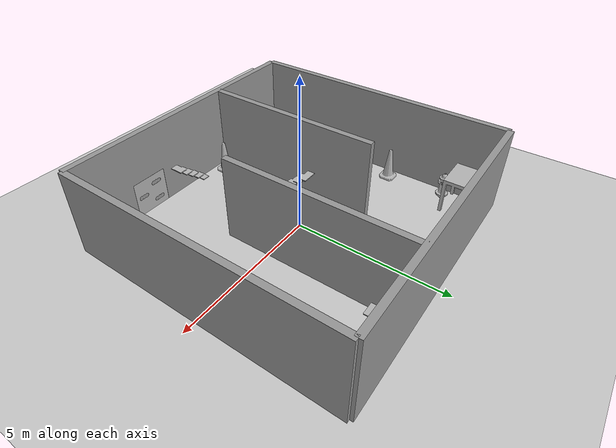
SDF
<sdf version="1.4">
 <world name="default">
  <light name="sun" type="directional">
   <pose>0 0 10 0 -0 -1.5708</pose>
   <diffuse>0.8 0.8 0.8 1</diffuse>
   <specular>0.2 0.2 0.2 1</specular>
   <attenuation>
    <range>1000</range>
    <constant>0.9</constant>
    <linear>0.01</linear>
    <quadratic>0.001</quadratic>
   </attenuation>
   <direction>-0.5 0.1 -0.9</direction>
  </light>
  <light name="user_point_light_0" type="point">
   <cast_shadows>0</cast_shadows>
   <pose>-8 -9 1 0 -0 -1.5708</pose>
   <diffuse>0.5 0.5 0.5 1</diffuse>
   <specular>0.1 0.1 0.1 1</specular>
   <attenuation>
    <range>20</range>
    <constant>0.5</constant>
    <linear>0.01</linear>
    <quadratic>0</quadratic>
   </attenuation>
   <direction>0 0 -1</direction>
  </light>
  <light name="user_point_light_1" type="point">
   <cast_shadows>0</cast_shadows>
   <pose>9 6 1 0 -0 -1.5708</pose>
   <diffuse>0.5 0.5 0.5 1</diffuse>
   <specular>0.1 0.1 0.1 1</specular>
   <attenuation>
    <range>20</range>
    <constant>0.5</constant>
    <linear>0.01</linear>
    <quadratic>0</quadratic>
   </attenuation>
   <direction>0 0 -1</direction>
  </light>
  <model name="ground_plane">
   <pose>0 0 0 0 0 -1.5708</pose>
   <static>1</static>
   <link name="link">
    <collision name="collision">
     <geometry><plane><normal>0 0 1</normal><size>100 100</size></plane></geometry>
     <surface><friction><ode><mu>100</mu><mu2>50</mu2></ode></friction></surface>
    </collision>
    <visual name="visual">
     <cast_shadows>0</cast_shadows>
     <geometry><plane><normal>0 0 1</normal><size>100 100</size></plane></geometry>
     <material>
      <script><uri>file://media/materials/scripts/gazebo.material</uri><name>Gazebo/Grey</name></script>
     </material>
    </visual>
    <velocity_decay><linear>0</linear><angular>0</angular></velocity_decay>
   </link>
  </model>
  <physics type="ode">
   <max_step_size>0.001</max_step_size>
   <real_time_factor>1</real_time_factor>
   <real_time_update_rate>1000</real_time_update_rate>
   <gravity>0 0 -9.8</gravity>
  </physics>
  <scene><ambient>0.4 0.4 0.4 1</ambient><background>0.7 0.7 0.7 1</background><shadows>1</shadows></scene>
  <spherical_coordinates>
   <surface_model>EARTH_WGS84</surface_model>
   <latitude_deg>0</latitude_deg>
   <longitude_deg>0</longitude_deg>
   <elevation>0</elevation>
   <heading_deg>0</heading_deg>
  </spherical_coordinates>
  <model name="grey_wall">
   <static>1</static>
   <link name="link">
    <pose>0 0 1.4 0 -0 -1.5708</pose>
    <collision name="collision"><geometry><box><size>9 0.2 2.8</size></box></geometry></collision>
    <visual name="visual">
     <cast_shadows>0</cast_shadows>
     <geometry><box><size>9 0.2 2.8</size></box></geometry>
     <material>
      <script>
       <uri>model://grey_wall/materials/scripts</uri>
       <uri>model://grey_wall/materials/textures</uri>
       <name>vrc/grey_wall</name>
      </script>
     </material>
    </visual>
    <velocity_decay><linear>0</linear><angular>0</angular></velocity_decay>
   </link>
   <pose>4.5 0 0 0 -0 0</pose>
  </model>
  <model name="grey_wall_0">
   <static>1</static>
   <link name="link">
    <pose>0 0 1.4 0 -0 -1.5708</pose>
    <collision name="collision"><geometry><box><size>9 0.2 2.8</size></box></geometry></collision>
    <visual name="visual">
     <cast_shadows>0</cast_shadows>
     <geometry><box><size>9 0.2 2.8</size></box></geometry>
     <material>
      <script>
       <uri>model://grey_wall/materials/scripts</uri>
       <uri>model://grey_wall/materials/textures</uri>
       <name>vrc/grey_wall</name>
      </script>
     </material>
    </visual>
    <velocity_decay><linear>0</linear><angular>0</angular></velocity_decay>
   </link>
   <pose>-4.5 0 0 0 -0 0</pose>
  </model>
  <model name="grey_wall_1">
   <static>1</static>
   <link name="link">
    <pose>0 0 1.4 0 -0 -1.5708</pose>
    <collision name="collision"><geometry><box><size>9 0.2 2.8</size></box></geometry></collision>
    <visual name="visual">
     <cast_shadows>0</cast_shadows>
     <geometry><box><size>9 0.2 2.8</size></box></geometry>
     <material>
      <script>
       <uri>model://grey_wall/materials/scripts</uri>
       <uri>model://grey_wall/materials/textures</uri>
       <name>vrc/grey_wall_stone</name>
      </script>
     </material>
    </visual>
    <velocity_decay><linear>0</linear><angular>0</angular></velocity_decay>
   </link>
   <pose>0 -4.5 0 0 -0 1.5708</pose>
  </model>
  <model name="grey_wall_2">
   <static>1</static>
   <link name="link">
    <pose>0 0 1.4 0 -0 -1.5708</pose>
    <collision name="collision"><geometry><box><size>6 0.2 2.8</size></box></geometry></collision>
    <visual name="visual">
     <cast_shadows>0</cast_shadows>
     <geometry><box><size>6 0.2 2.8</size></box></geometry>
     <material>
      <script>
       <uri>model://grey_wall/materials/scripts</uri>
       <uri>model://grey_wall/materials/textures</uri>
       <name>vrc/grey_wall_triangle</name>
      </script>
     </material>
    </visual>
    <velocity_decay><linear>0</linear><angular>0</angular></velocity_decay>
   </link>
   <pose>-1.5 -1.5 0 0 -0 0</pose>
  </model>
  <model name="grey_wall_3">
   <static>1</static>
   <link name="link">
    <pose>0 0 1.4 0 -0 -1.5708</pose>
    <collision name="collision"><geometry><box><size>9 0.2 2.8</size></box></geometry></collision>
    <visual name="visual">
     <cast_shadows>0</cast_shadows>
     <geometry><box><size>9 0.2 2.8</size></box></geometry>
     <material>
      <script>
       <uri>model://grey_wall/materials/scripts</uri>
       <uri>model://grey_wall/materials/textures</uri>
       <name>vrc/grey_wall_square</name>
      </script>
     </material>
    </visual>
    <velocity_decay><linear>0</linear><angular>0</angular></velocity_decay>
   </link>
   <pose>0 4.5 0 0 -0 1.5708</pose>
  </model>
  <model name="grey_wall_5">
   <static>1</static>
   <link name="link">
    <pose>0 0 1.4 0 -0 -1.5708</pose>
    <collision name="collision"><geometry><box><size>6 0.2 2.8</size></box></geometry></collision>
    <visual name="visual">
     <cast_shadows>0</cast_shadows>
     <geometry><box><size>6 0.2 2.8</size></box></geometry>
     <material>
      <script>
       <uri>model://grey_wall/materials/scripts</uri>
       <uri>model://grey_wall/materials/textures</uri>
       <name>vrc/grey_wall_tile</name>
      </script>
     </material>
    </visual>
    <velocity_decay><linear>0</linear><angular>0</angular></velocity_decay>
   </link>
   <pose>1.5 1.5 0 0 -0 0</pose>
  </model>
  <model name="nist_stairs_120">
   <static>1</static>
   <link name="nist_stairs_120_link">
    <collision name="collision">
     <geometry>
      <mesh><uri>model://nist_stairs_120/meshes/nist_stairs_120.dae</uri><scale>1 1 1</scale></mesh>
     </geometry>
    </collision>
    <visual name="visual">
     <geometry>
      <mesh><uri>model://nist_stairs_120/meshes/nist_stairs_120.dae</uri><scale>1 1 1</scale></mesh>
     </geometry>
    </visual>
    <velocity_decay><linear>0</linear><angular>0</angular></velocity_decay>
   </link>
   <pose>1.44725 4 0 0 -0 0</pose>
  </model>
  <model name="nist_elevated_floor_120">
   <static>1</static>
   <link name="nist_elevated_floor_120">
    <collision name="collision">
     <geometry>
      <mesh><uri>model://nist_elevated_floor_120/meshes/nist_elevated_floor_120.dae</uri><scale>1 1 1</scale></mesh>
     </geometry>
    </collision>
    <visual name="visual">
     <geometry>
      <mesh><uri>model://nist_elevated_floor_120/meshes/nist_elevated_floor_120.dae</uri><scale>1 1 1</scale></mesh>
     </geometry>
    </visual>
    <velocity_decay><linear>0</linear><angular>0</angular></velocity_decay>
   </link>
   <pose>-3.81737 3.79395 0 0 -0 0</pose>
  </model>
  <model name="coke_can">
   <link name="link">
    <inertial>
     <pose>-0.01 -0.012 0.15 0 -0 0</pose>
     <mass>0.39</mass>
     <inertia><ixx>0.00058</ixx><ixy>0</ixy><ixz>0</ixz><iyy>0.00058</iyy><iyz>0</iyz><izz>0.00019</izz></inertia>
    </inertial>
    <collision name="collision">
     <pose>0 0 -0.46 0 -0 0</pose>
     <geometry><mesh><uri>model://coke_can/meshes/coke_can.dae</uri></mesh></geometry>
     <surface>
      <friction><ode><mu>1</mu><mu2>1</mu2></ode></friction>
      <contact><ode><kp>1e+07</kp><kd>1</kd><min_depth>0.001</min_depth><max_vel>0.1</max_vel></ode></contact>
     </surface>
    </collision>
    <visual name="visual">
     <pose>0 0 -0.46 0 -0 0</pose>
     <geometry><mesh><uri>model://coke_can/meshes/coke_can.dae</uri></mesh></geometry>
    </visual>
    <velocity_decay><linear>0</linear><angular>0</angular></velocity_decay>
   </link>
   <pose>-3.82476 3.7412 1.19539 0.002286 0.005608 -0.267326</pose>
   <static>0</static>
  </model>
  <model name="fire_hydrant">
   <static>1</static>
   <link name="link">
    <collision name="collision">
     <geometry><mesh><uri>model://fire_hydrant/meshes/fire_hydrant.dae</uri></mesh></geometry>
    </collision>
    <visual name="visual">
     <geometry><mesh><uri>model://fire_hydrant/meshes/fire_hydrant.dae</uri></mesh></geometry>
    </visual>
    <velocity_decay><linear>0</linear><angular>0</angular></velocity_decay>
   </link>
   <pose>-4 3 0 0 -0 0</pose>
  </model>
  <model name="Construction Cone">
   <link name="link">
    <collision name="collision">
     <geometry>
      <mesh><scale>10 10 10</scale><uri>model://construction_cone/meshes/construction_cone.dae</uri></mesh>
     </geometry>
    </collision>
    <visual name="visual">
     <geometry>
      <mesh><scale>10 10 10</scale><uri>model://construction_cone/meshes/construction_cone.dae</uri></mesh>
     </geometry>
    </visual>
    <velocity_decay><linear>0</linear><angular>0</angular></velocity_decay>
    <inertial>
     <inertia><ixx>1</ixx><ixy>0</ixy><ixz>0</ixz><iyy>1</iyy><iyz>0</iyz><izz>1</izz></inertia>
     <mass>1</mass>
    </inertial>
   </link>
   <pose>-1 -4 -1e-06 -4e-06 0 0</pose>
   <static>0</static>
  </model>
  <model name="fire_hydrant_0">
   <static>1</static>
   <link name="link">
    <collision name="collision">
     <geometry><mesh><uri>model://fire_hydrant/meshes/fire_hydrant.dae</uri></mesh></geometry>
    </collision>
    <visual name="visual">
     <geometry><mesh><uri>model://fire_hydrant/meshes/fire_hydrant.dae</uri></mesh></geometry>
    </visual>
    <velocity_decay><linear>0</linear><angular>0</angular></velocity_decay>
   </link>
   <pose>4 -4 0 0 -0 0</pose>
  </model>
  <model name="nist">
   <static>1</static>
   <link name="nist_maze_wall_triple_holes_120_link">
    <collision name="collision">
     <geometry>
      <mesh>
       <uri>model://nist_maze_wall_triple_holes_120/meshes/nist_maze_wall_triple_holes_120.dae</uri>
       <scale>1 1 1</scale>
      </mesh>
     </geometry>
    </collision>
    <visual name="visual">
     <geometry>
      <mesh>
       <uri>model://nist_maze_wall_triple_holes_120/meshes/nist_maze_wall_triple_holes_120.dae</uri>
       <scale>1 1 1</scale>
      </mesh>
     </geometry>
    </visual>
    <velocity_decay><linear>0</linear><angular>0</angular></velocity_decay>
   </link>
   <pose>2 -5 0 0 -0 0</pose>
  </model>
  <model name="nist_stairs_120_0">
   <static>1</static>
   <link name="nist_stairs_120_link">
    <collision name="collision">
     <geometry>
      <mesh><uri>model://nist_stairs_120/meshes/nist_stairs_120.dae</uri><scale>1 1 1</scale></mesh>
     </geometry>
    </collision>
    <visual name="visual">
     <geometry>
      <mesh><uri>model://nist_stairs_120/meshes/nist_stairs_120.dae</uri><scale>1 1 1</scale></mesh>
     </geometry>
    </visual>
    <velocity_decay><linear>0</linear><angular>0</angular></velocity_decay>
   </link>
   <pose>0.500148 -4.53939 0 0 0 -1.57713</pose>
  </model>
  <model name="fire_hydrant_1">
   <static>1</static>
   <link name="link">
    <collision name="collision">
     <geometry><mesh><uri>model://fire_hydrant/meshes/fire_hydrant.dae</uri></mesh></geometry>
    </collision>
    <visual name="visual">
     <geometry><mesh><uri>model://fire_hydrant/meshes/fire_hydrant.dae</uri></mesh></geometry>
    </visual>
    <velocity_decay><linear>0</linear><angular>0</angular></velocity_decay>
   </link>
   <pose>4 4 0 0 -0 0</pose>
  </model>
  <model name="Construction Cone_0">
   <link name="link">
    <collision name="collision">
     <geometry>
      <mesh><scale>10 10 10</scale><uri>model://construction_cone/meshes/construction_cone.dae</uri></mesh>
     </geometry>
    </collision>
    <visual name="visual">
     <geometry>
      <mesh><scale>10 10 10</scale><uri>model://construction_cone/meshes/construction_cone.dae</uri></mesh>
     </geometry>
    </visual>
    <velocity_decay><linear>0</linear><angular>0</angular></velocity_decay>
    <inertial>
     <inertia><ixx>1</ixx><ixy>0</ixy><ixz>0</ixz><iyy>1</iyy><iyz>0</iyz><izz>1</izz></inertia>
     <mass>1</mass>
    </inertial>
   </link>
   <pose>2.51511 4 -7e-06 2e-06 2e-06 1.61559e-27</pose>
   <static>0</static>
  </model>
  <model name="nist_0">
   <static>1</static>
   <link name="nist_maze_wall_triple_holes_120_link">
    <collision name="collision">
     <geometry>
      <mesh>
       <uri>model://nist_maze_wall_triple_holes_120/meshes/nist_maze_wall_triple_holes_120.dae</uri>
       <scale>1 1 1</scale>
      </mesh>
     </geometry>
    </collision>
    <visual name="visual">
     <geometry>
      <mesh>
       <uri>model://nist_maze_wall_triple_holes_120/meshes/nist_maze_wall_triple_holes_120.dae</uri>
       <scale>1 1 1</scale>
      </mesh>
     </geometry>
    </visual>
    <velocity_decay><linear>0</linear><angular>0</angular></velocity_decay>
   </link>
   <pose>3.77745 -0.996475 0 0 0 -1.56928</pose>
  </model>
  <model name="nist_1">
   <static>1</static>
   <link name="nist_maze_wall_triple_holes_120_link">
    <collision name="collision">
     <geometry>
      <mesh>
       <uri>model://nist_maze_wall_triple_holes_120/meshes/nist_maze_wall_triple_holes_120.dae</uri>
       <scale>1 1 1</scale>
      </mesh>
     </geometry>
    </collision>
    <visual name="visual">
     <geometry>
      <mesh>
       <uri>model://nist_maze_wall_triple_holes_120/meshes/nist_maze_wall_triple_holes_120.dae</uri>
       <scale>1 1 1</scale>
      </mesh>
     </geometry>
    </visual>
    <velocity_decay><linear>0</linear><angular>0</angular></velocity_decay>
   </link>
   <pose>3.51437 3.58418 0 0 -0 0</pose>
  </model>
  <model name="Construction Cone_1">
   <link name="link">
    <collision name="collision">
     <geometry>
      <mesh><scale>10 10 10</scale><uri>model://construction_cone/meshes/construction_cone.dae</uri></mesh>
     </geometry>
    </collision>
    <visual name="visual">
     <geometry>
      <mesh><scale>10 10 10</scale><uri>model://construction_cone/meshes/construction_cone.dae</uri></mesh>
     </geometry>
    </visual>
    <velocity_decay><linear>0</linear><angular>0</angular></velocity_decay>
    <inertial>
     <inertia><ixx>1</ixx><ixy>0</ixy><ixz>0</ixz><iyy>1</iyy><iyz>0</iyz><izz>1</izz></inertia>
     <mass>1</mass>
    </inertial>
   </link>
   <pose>1 1 0 0 1e-06 0</pose>
   <static>0</static>
  </model>
  <model name="Construction Cone_2">
   <link name="link">
    <collision name="collision">
     <geometry>
      <mesh><scale>10 10 10</scale><uri>model://construction_cone/meshes/construction_cone.dae</uri></mesh>
     </geometry>
    </collision>
    <visual name="visual">
     <geometry>
      <mesh><scale>10 10 10</scale><uri>model://construction_cone/meshes/construction_cone.dae</uri></mesh>
     </geometry>
    </visual>
    <velocity_decay><linear>0</linear><angular>0</angular></velocity_decay>
    <inertial>
     <inertia><ixx>1</ixx><ixy>0</ixy><ixz>0</ixz><iyy>1</iyy><iyz>0</iyz><izz>1</izz></inertia>
     <mass>1</mass>
    </inertial>
   </link>
   <pose>-4 1 -9e-06 0 -0 0</pose>
   <static>0</static>
  </model>
  <model name="nist_stairs_120_1">
   <static>1</static>
   <link name="nist_stairs_120_link">
    <collision name="collision">
     <geometry>
      <mesh><uri>model://nist_stairs_120/meshes/nist_stairs_120.dae</uri><scale>1 1 1</scale></mesh>
     </geometry>
    </collision>
    <visual name="visual">
     <geometry>
      <mesh><uri>model://nist_stairs_120/meshes/nist_stairs_120.dae</uri><scale>1 1 1</scale></mesh>
     </geometry>
    </visual>
    <velocity_decay><linear>0</linear><angular>0</angular></velocity_decay>
   </link>
   <pose>-1.47382 -1 0 0 -0 0</pose>
  </model>
 </world>
</sdf>
